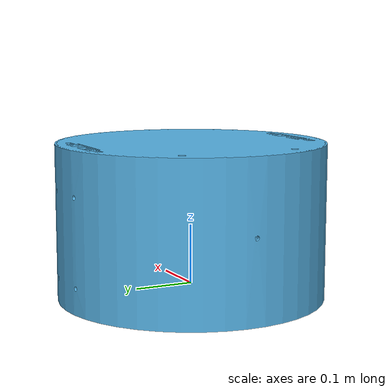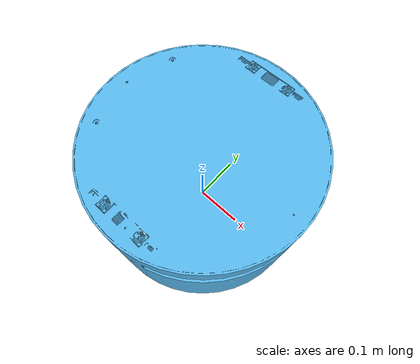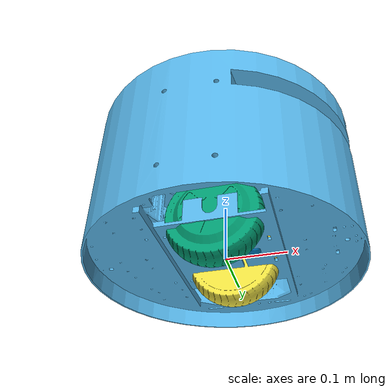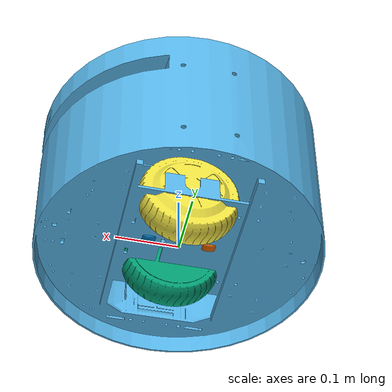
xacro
<?xml version="1.0"?>

<robot name="robot" xmlns:xacro="http://ros.org/wiki/xacro">

  <!-- Include Gazebo Parameters -->
  <xacro:include filename="$(find robot_description)/urdf/robot_gazebo.xacro" />

  <!-- Include ros2_control Plugins -->
  <xacro:include filename="$(find robot_description)/urdf/robot_ros2_control.xacro" />

  <link name="base_footprint"/>

  <link name="base_link">
    <inertial>
      <origin xyz="0 0 0.04" rpy="0.0 0.25 0.3" />
      <mass value="8.2573504e-01"/>
      <inertia ixx="2.2124416e-02" ixy="-1.2294101e-04" ixz="3.4938785e-04"
               iyy="2.1193702e-02" iyz="-5.0120904e-05"
               izz="2.0064271e-02" />
    </inertial>
    <visual>
      <origin xyz="0 0 0" rpy="0 0 0" />
      <geometry>
        <mesh filename="package://robot_description/meshes/base_link.STL" />
      </geometry>
    </visual>
    <collision>
      <origin xyz="0 0 0" rpy="0 0 0" />
      <geometry>
        <mesh filename="package://robot_description/meshes/base_link.STL" />
      </geometry>
    </collision>
  </link>

  <joint name="base_joint" type="fixed">
    <parent link="base_footprint"/>
    <child link="base_link" />
    <origin xyz="0 0 0.033" rpy="0 0 0"/>
  </joint>

  <link name="wheel_right_link">
    <inertial>
      <origin xyz="0 -0.014 0" rpy="0 0 0" />
      <mass value="0.0530086090966721" />
      <inertia ixx="1.88176298336665E-05" ixy="-4.8444933029987E-10" ixz="1.88163708851143E-08"
               iyy="3.11510738647764E-05" iyz="-6.93560663069607E-11"
               izz="1.8801969558182E-05" />
    </inertial>
    <visual>
      <origin xyz="0 0 0" rpy="1.57 0 0" />
      <geometry>
        <mesh filename="package://robot_description/meshes/wheel_right_link.STL" />
      </geometry>
    </visual>
    <collision>
      <origin xyz="0 -0.015 0" rpy="1.57 0 0" />
      <geometry>
        <sphere radius="0.033"/>
      </geometry>
    </collision>
  </link>

  <joint name="wheel_right_joint" type="continuous">
    <origin xyz="0 -0.0701101849418637 0" rpy="0 0 0" />
    <parent link="base_link" />
    <child link="wheel_right_link" />
    <axis xyz="0 1 0" />
  </joint>

  <link
    name="wheel_left_link">
    <inertial>
      <origin xyz="0 0.014 0" rpy="0 0 0" />
      <mass value="0.0530086043217644" />
      <inertia ixx="1.8792911368909E-05"  ixy="3.31256392204584E-10" ixz="-1.14082001662767E-08"
               iyy="3.11510738759073E-05" iyz="-3.60499245082192E-10"
               izz="1.88266886146847E-05" />
    </inertial>
    <visual>
      <origin xyz="0 0 0" rpy="-1.57 0 0" />
      <geometry>
        <mesh filename="package://robot_description/meshes/wheel_left_link.STL" />
      </geometry>
    </visual>
    <collision>
      <origin xyz="0 0.015 0" rpy="-1.57 0 0" />
      <geometry>
        <sphere radius="0.033"/>
      </geometry>
    </collision>
  </link>

  <joint name="wheel_left_joint" type="continuous">
    <origin xyz="0 0.0701101849418642 0" rpy="0 0 0" />
    <parent link="base_link" />
    <child link="wheel_left_link" />
    <axis xyz="0 1 0" />
  </joint>

  <link name="caster_front_link">
    <inertial>
      <origin xyz="3.89968128948481E-07 2.40073004698083E-07 0.00219173397061506" rpy="0 0 0" />
      <mass value="1.44379265037903E-06" />
      <inertia ixx="7.23075276010246E-11" ixy="-6.10956883467859E-16" ixz="2.22849693525031E-15"
               iyy="3.8713793085917E-11"  iyz="2.93909858781952E-15"
               izz="1.00967486676306E-10" />
    </inertial>
    <visual>
      <origin xyz="0 0 0" rpy="0 0 0" />
      <geometry>
        <mesh filename="package://robot_description/meshes/caster_front_link.STL" />
      </geometry>
    </visual>
    <collision>
      <origin xyz="0 0 0" rpy="0 0 0" />
      <geometry>
        <sphere radius="0.005"/>
      </geometry>
    </collision>
  </link>

  <joint name="caster_front_joint" type="fixed">
    <origin xyz="0.04755 0 -0.0275" rpy="0 0 0" />
    <parent link="base_link" />
    <child link="caster_front_link" />
    <axis xyz="0 0 0" />
  </joint>

  <link name="caster_rear_link">
    <inertial>
      <origin xyz="3.8996812895542E-07 2.40073004698083E-07 0.00219173397061509" rpy="0 0 0" />
      <mass value="1.44379265037902E-06" />
      <inertia ixx="7.23075276010246E-11" ixy="-6.10956872363424E-16" ixz="2.22849693527207E-15"
               iyy="3.87137930859167E-11" iyz="2.939098587861E-15"
               izz="1.00967486676306E-10" />
    </inertial>
    <visual>
      <origin xyz="0 0 0" rpy="0 0 0" />
      <geometry>
        <mesh filename="package://robot_description/meshes/caster_rear_link.STL" />
      </geometry>
    </visual>
    <collision>
      <origin xyz="0 0 0" rpy="0 0 0" />
      <geometry>
        <sphere radius="0.005"/>
      </geometry>
    </collision>
  </link>

  <joint name="caster_rear_joint" type="fixed">
    <origin xyz="-0.04755 0 -0.0275" rpy="0 0 0" />
    <parent link="base_link" />
    <child link="caster_rear_link" />
    <axis xyz="0 0 0" />
  </joint>

  <link name="imu_link">
    <inertial>
      <origin xyz="-0.00552433659106688 0.000168210391520346 0.000514000497342681" rpy="0 0 0" />
      <mass value="0.000528415362211671" />
      <inertia ixx="1.46176048428261E-08" ixy="1.40015117949421E-10" ixz="-1.99633872937403E-12"
               iyy="8.59662482954888E-09" iyz="7.52375112767959E-12"
               izz="2.30279421279312E-08" />
    </inertial>
    <visual>
      <origin xyz="0 0 0" rpy="0 0 0" />
      <geometry>
        <mesh filename="package://bumperbot_description/meshes/imu_link.STL" />
      </geometry>
      <material name="">
        <color rgba="0.792156862745098 0.819607843137255 0.933333333333333 1" />
      </material>
    </visual>
    <collision>
      <origin xyz="0 0 0" rpy="0 0 0" />
      <geometry>
        <mesh filename="package://bumperbot_description/meshes/imu_link.STL" />
      </geometry>
    </collision>
  </link>

  <joint name="imu_joint" type="fixed">
    <origin xyz="0 0 0.0698986241758014" rpy="0 0 0" />
    <parent link="base_link" />
    <child link="imu_link" />
    <axis xyz="0 0 0" />
  </joint>

  <link name="ultrasonic_1_link">
    <inertia>
      <origin xyz="0 0 0" rpy="0 0 0" />
      <mass value="1E-5" />
      <inertia ixx="1E-6" ixy="0" ixz="0"
               iyy="1E-6" iyz="0"
               izz="1E-6" />
    </inertia>
    <visual>
      <origin xyz="0 0 0" rpy="0 0 0"/>
      <geometry>
        <box size="0.01 0.01 0.01"/>
      </geometry>
    </visual>
    <collision>
      <origin xyz="0 0 0" rpy="0 0 0"/>
      <geometry>
        <box size="0.01 0.01 0.01"/>
      </geometry>
    </collision>
  </link>

  <joint name="ultrasonic_1_joint" type="fixed">
    <origin xyz="0.04 0 0.001" rpy="0 0 0" />
    <axis xyz="1 0 0" />
    <parent link="base_link"/>
    <child link="ultrasonic_1_link"/>
  </joint>

  <link name="ultrasonic_2_link">
    <inertia>
      <origin xyz="0 0 0" rpy="0 0 0" />
      <mass value="1E-5" />
      <inertia ixx="1E-6" ixy="0" ixz="0"
               iyy="1E-6" iyz="0"
               izz="1E-6" />
    </inertia>
    <visual>
      <origin xyz="0 0 0" rpy="0 0 0"/>
      <geometry>
        <box size="0.01 0.01 0.01"/>
      </geometry>
    </visual>
    <collision>
      <origin xyz="0 0 0" rpy="0 0 0"/>
      <geometry>
        <box size="0.01 0.01 0.01"/>
      </geometry>
    </collision>
  </link>

  <joint name="ultrasonic_2_joint" type="fixed">
    <origin xyz="0.04 0.04 0.001" rpy="0 0 ${30*pi/180}" />
    <axis xyz="1 0 0" />
    <parent link="base_link"/>
    <child link="ultrasonic_2_link"/>
  </joint>

  <link name="ultrasonic_3_link">
    <inertia>
      <origin xyz="0 0 0" rpy="0 0 0" />
      <mass value="1E-5" />
      <inertia ixx="1E-6" ixy="0" ixz="0"
               iyy="1E-6" iyz="0"
               izz="1E-6" />
    </inertia>
    <visual>
      <origin xyz="0 0 0" rpy="0 0 0"/>
      <geometry>
        <box size="0.01 0.01 0.01"/>
      </geometry>
    </visual>
    <collision>
      <origin xyz="0 0 0" rpy="0 0 0"/>
      <geometry>
        <box size="0.01 0.01 0.01"/>
      </geometry>
    </collision>
  </link>

  <joint name="ultrasonic_3_joint" type="fixed">
    <origin xyz="0.04 -0.04 0.001" rpy="0 0 ${-30*pi/180}" />
    <axis xyz="1 0 0" />
    <parent link="base_link"/>
    <child link="ultrasonic_3_link"/>
  </joint>

</robot>
